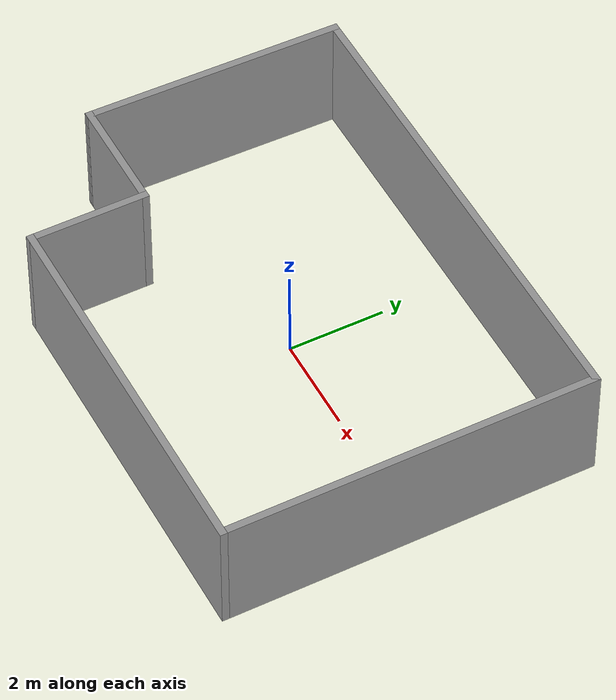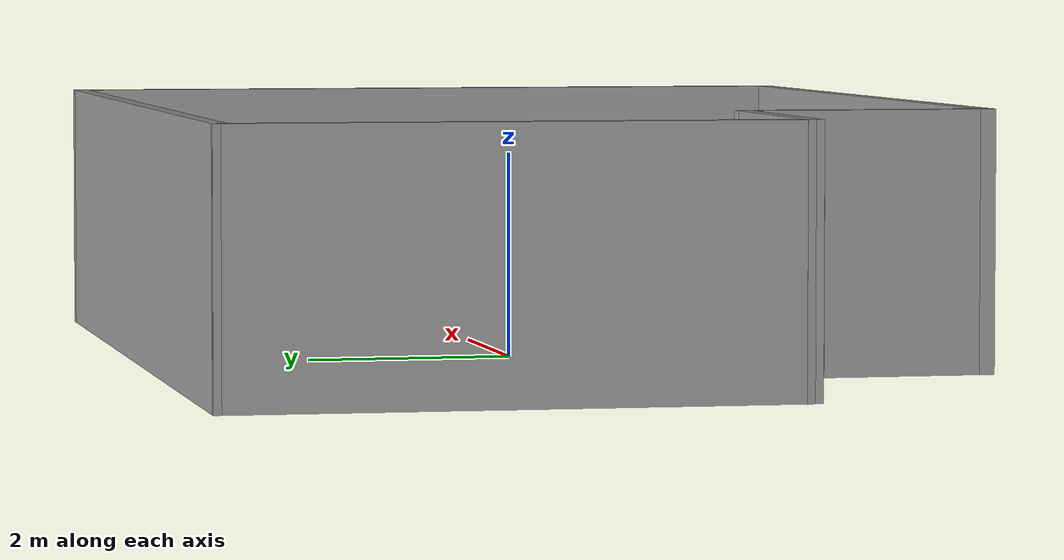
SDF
<?xml version='1.0'?>
<sdf version='1.6'>
  <model name='Untitled'>
    <pose frame=''>-0.025342 -0.185618 0 0 -0 0</pose>
    <link name='Wall_21'>
      <collision name='Wall_21_Collision'>
        <geometry>
          <box>
            <size>10.25 0.15 2.5</size>
          </box>
        </geometry>
        <pose frame=''>0 0 1.25 0 -0 0</pose>
      </collision>
      <visual name='Wall_21_Visual'>
        <pose frame=''>0 0 1.25 0 -0 0</pose>
        <geometry>
          <box>
            <size>10.25 0.15 2.5</size>
          </box>
        </geometry>
        <material>
          <script>
            <uri>file://media/materials/scripts/gazebo.material</uri>
            <name>Gazebo/Grey</name>
          </script>
          <ambient>1 1 1 1</ambient>
        </material>
        <meta>
          <layer>0</layer>
        </meta>
      </visual>
      <pose frame=''>0.050707 3.79929 0 0 -0 0</pose>
    </link>
    <link name='Wall_22'>
      <collision name='Wall_22_Collision'>
        <geometry>
          <box>
            <size>7.75 0.15 2.5</size>
          </box>
        </geometry>
        <pose frame=''>0 0 1.25 0 -0 0</pose>
      </collision>
      <visual name='Wall_22_Visual'>
        <pose frame=''>0 0 1.25 0 -0 0</pose>
        <geometry>
          <box>
            <size>7.75 0.15 2.5</size>
          </box>
        </geometry>
        <material>
          <script>
            <uri>file://media/materials/scripts/gazebo.material</uri>
            <name>Gazebo/Grey</name>
          </script>
          <ambient>1 1 1 1</ambient>
        </material>
        <meta>
          <layer>0</layer>
        </meta>
      </visual>
      <pose frame=''>5.10071 -0.000707 0 0 -0 -1.5708</pose>
    </link>
    <link name='Wall_23'>
      <collision name='Wall_23_Collision'>
        <geometry>
          <box>
            <size>8 0.15 2.5</size>
          </box>
        </geometry>
        <pose frame=''>0 0 1.25 0 -0 0</pose>
      </collision>
      <visual name='Wall_23_Visual'>
        <pose frame=''>0 0 1.25 0 -0 0</pose>
        <geometry>
          <box>
            <size>8 0.15 2.5</size>
          </box>
        </geometry>
        <material>
          <script>
            <uri>file://media/materials/scripts/gazebo.material</uri>
            <name>Gazebo/Grey</name>
          </script>
          <ambient>1 1 1 1</ambient>
        </material>
        <meta>
          <layer>0</layer>
        </meta>
      </visual>
      <pose frame=''>1.17571 -3.80071 0 0 -0 3.14159</pose>
    </link>
    <link name='Wall_24'>
      <collision name='Wall_24_Collision'>
        <geometry>
          <box>
            <size>2.5 0.15 2.5</size>
          </box>
        </geometry>
        <pose frame=''>0 0 1.25 0 -0 0</pose>
      </collision>
      <visual name='Wall_24_Visual'>
        <pose frame=''>0 0 1.25 0 -0 0</pose>
        <geometry>
          <box>
            <size>2.5 0.15 2.5</size>
          </box>
        </geometry>
        <material>
          <script>
            <uri>file://media/materials/scripts/gazebo.material</uri>
            <name>Gazebo/Grey</name>
          </script>
          <ambient>1 1 1 1</ambient>
        </material>
        <meta>
          <layer>0</layer>
        </meta>
      </visual>
      <pose frame=''>-2.74929 -2.62571 0 0 -0 1.5708</pose>
    </link>
    <link name='Wall_25'>
      <collision name='Wall_25_Collision'>
        <geometry>
          <box>
            <size>2.5 0.15 2.5</size>
          </box>
        </geometry>
        <pose frame=''>0 0 1.25 0 -0 0</pose>
      </collision>
      <visual name='Wall_25_Visual'>
        <pose frame=''>0 0 1.25 0 -0 0</pose>
        <geometry>
          <box>
            <size>2.5 0.15 2.5</size>
          </box>
        </geometry>
        <material>
          <script>
            <uri>file://media/materials/scripts/gazebo.material</uri>
            <name>Gazebo/Grey</name>
          </script>
          <ambient>1 1 1 1</ambient>
        </material>
        <meta>
          <layer>0</layer>
        </meta>
      </visual>
      <pose frame=''>-3.92429 -1.45071 0 0 -0 3.14159</pose>
    </link>
    <link name='Wall_26'>
      <collision name='Wall_26_Collision'>
        <geometry>
          <box>
            <size>5.40095 0.15 2.5</size>
          </box>
        </geometry>
        <pose frame=''>0 0 1.25 0 -0 0</pose>
      </collision>
      <visual name='Wall_26_Visual'>
        <pose frame=''>0 0 1.25 0 -0 0</pose>
        <geometry>
          <box>
            <size>5.40095 0.15 2.5</size>
          </box>
        </geometry>
        <material>
          <script>
            <uri>file://media/materials/scripts/gazebo.material</uri>
            <name>Gazebo/Grey</name>
          </script>
          <ambient>1 1 1 1</ambient>
        </material>
        <meta>
          <layer>0</layer>
        </meta>
      </visual>
      <pose frame=''>-5.04929 1.17429 0 0 -0 1.55175</pose>
    </link>
    <static>1</static>
  </model>
</sdf>
